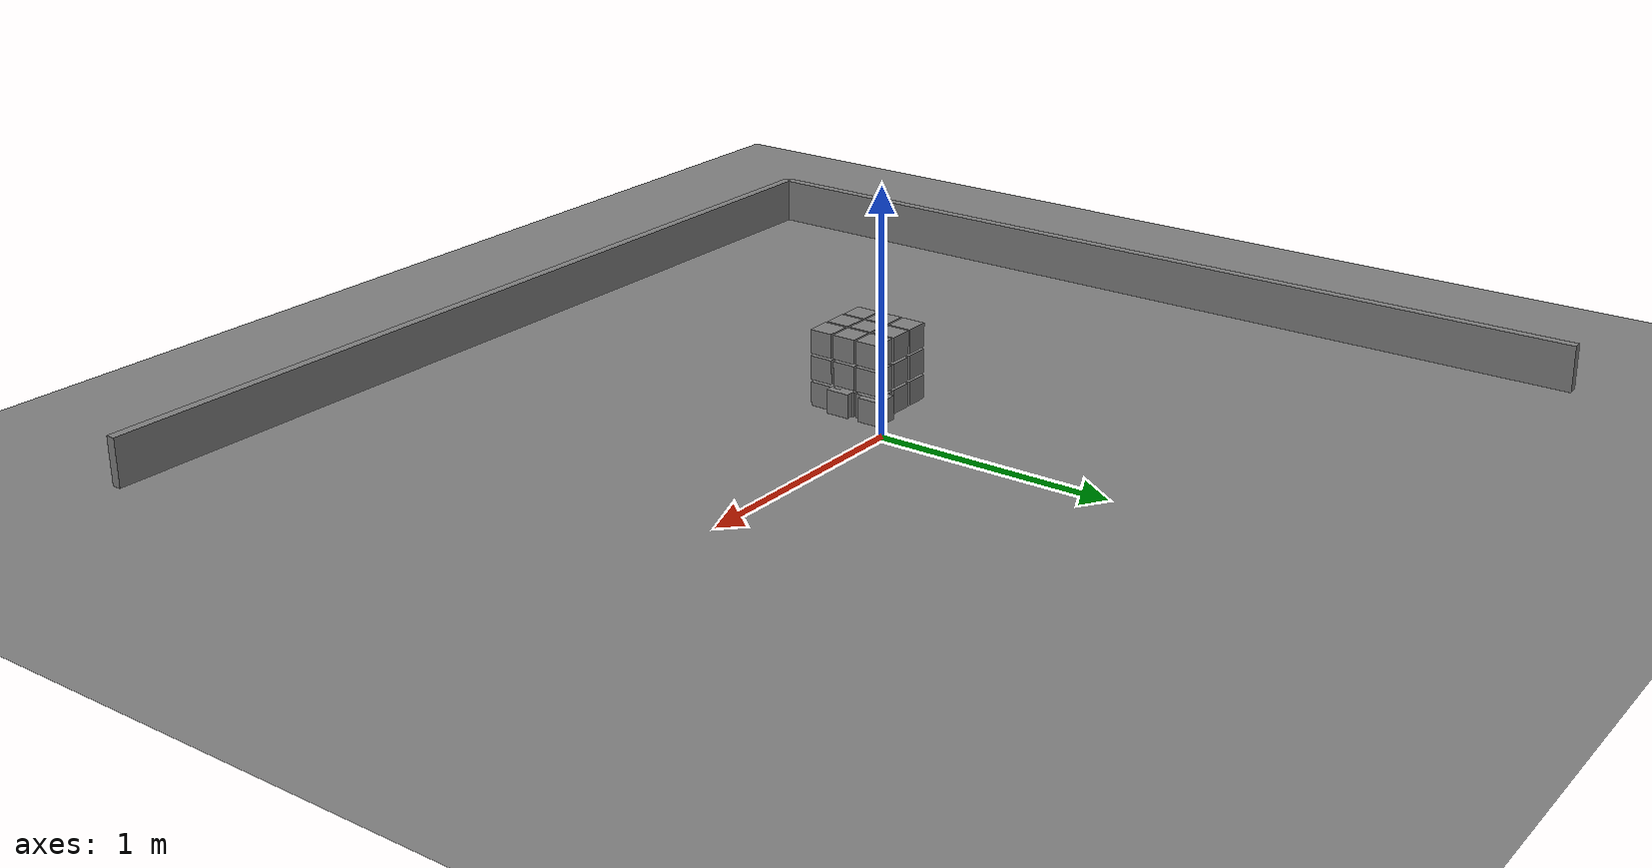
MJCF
<mujoco model="MuJoCo Model">
  <compiler angle="radian"/>
  <option gravity="-8 -8 -10" cone="elliptic" jacobian="sparse">
    <flag island="disable"/>
  </option>
  <worldbody>
    <geom name="floor" size="3 3 0.01" type="plane"/>
    <geom name="wallx" size="0.02 2 0.1" pos="-2 0 0.1" type="box"/>
    <geom name="wally" size="2 0.02 0.1" pos="0 -2 0.1" type="box"/>
    <body pos="-0.35 -0.35 0.06">
      <joint type="free"/>
      <geom size="0.05 0.05 0.05" type="box"/>
    </body>
    <body pos="-0.35 -0.35 0.17">
      <joint type="free"/>
      <geom size="0.05 0.05 0.05" type="box"/>
    </body>
    <body pos="-0.35 -0.35 0.28">
      <joint type="free"/>
      <geom size="0.05 0.05 0.05" type="box"/>
    </body>
    <body pos="-0.24 -0.35 0.06">
      <joint type="free"/>
      <geom size="0.05 0.05 0.05" type="box"/>
    </body>
    <body pos="-0.24 -0.35 0.17">
      <joint type="free"/>
      <geom size="0.05 0.05 0.05" type="box"/>
    </body>
    <body pos="-0.24 -0.35 0.28">
      <joint type="free"/>
      <geom size="0.05 0.05 0.05" type="box"/>
    </body>
    <body pos="-0.13 -0.35 0.06">
      <joint type="free"/>
      <geom size="0.05 0.05 0.05" type="box"/>
    </body>
    <body pos="-0.13 -0.35 0.17">
      <joint type="free"/>
      <geom size="0.05 0.05 0.05" type="box"/>
    </body>
    <body pos="-0.13 -0.35 0.28">
      <joint type="free"/>
      <geom size="0.05 0.05 0.05" type="box"/>
    </body>
    <body pos="-0.35 -0.24 0.06">
      <joint type="free"/>
      <geom size="0.05 0.05 0.05" type="box"/>
    </body>
    <body pos="-0.35 -0.24 0.17">
      <joint type="free"/>
      <geom size="0.05 0.05 0.05" type="box"/>
    </body>
    <body pos="-0.35 -0.24 0.28">
      <joint type="free"/>
      <geom size="0.05 0.05 0.05" type="box"/>
    </body>
    <body pos="-0.24 -0.24 0.06">
      <joint type="free"/>
      <geom size="0.05 0.05 0.05" type="box"/>
    </body>
    <body pos="-0.24 -0.24 0.17">
      <joint type="free"/>
      <geom size="0.05 0.05 0.05" type="box"/>
    </body>
    <body pos="-0.24 -0.24 0.28">
      <joint type="free"/>
      <geom size="0.05 0.05 0.05" type="box"/>
    </body>
    <body pos="-0.13 -0.24 0.06">
      <joint type="free"/>
      <geom size="0.05 0.05 0.05" type="box"/>
    </body>
    <body pos="-0.13 -0.24 0.17">
      <joint type="free"/>
      <geom size="0.05 0.05 0.05" type="box"/>
    </body>
    <body pos="-0.13 -0.24 0.28">
      <joint type="free"/>
      <geom size="0.05 0.05 0.05" type="box"/>
    </body>
    <body pos="-0.35 -0.13 0.06">
      <joint type="free"/>
      <geom size="0.05 0.05 0.05" type="box"/>
    </body>
    <body pos="-0.35 -0.13 0.17">
      <joint type="free"/>
      <geom size="0.05 0.05 0.05" type="box"/>
    </body>
    <body pos="-0.35 -0.13 0.28">
      <joint type="free"/>
      <geom size="0.05 0.05 0.05" type="box"/>
    </body>
    <body pos="-0.24 -0.13 0.06">
      <joint type="free"/>
      <geom size="0.05 0.05 0.05" type="box"/>
    </body>
    <body pos="-0.24 -0.13 0.17">
      <joint type="free"/>
      <geom size="0.05 0.05 0.05" type="box"/>
    </body>
    <body pos="-0.24 -0.13 0.28">
      <joint type="free"/>
      <geom size="0.05 0.05 0.05" type="box"/>
    </body>
    <body pos="-0.13 -0.13 0.06">
      <joint type="free"/>
      <geom size="0.05 0.05 0.05" type="box"/>
    </body>
    <body pos="-0.13 -0.13 0.17">
      <joint type="free"/>
      <geom size="0.05 0.05 0.05" type="box"/>
    </body>
    <body pos="-0.13 -0.13 0.28">
      <joint type="free"/>
      <geom size="0.05 0.05 0.05" type="box"/>
    </body>
    <body pos="-0.1 -0.1 0.06">
      <joint type="free"/>
      <geom size="0.05 0.05 0.05" type="box" condim="4" friction="1 0.01 0.01"/>
    </body>
    <body pos="-0.1 -0.25 0.06">
      <joint type="free"/>
      <geom size="0.05 0.05 0.05" type="box" condim="6" friction="1 0.01"/>
    </body>
  </worldbody>

  <keyframe>
    <key name="clump" qpos="-1.80552 -1.92899 0.165968 0.592736 -0.592938 0.392185 0.378524 -1.91689 -1.72343 0.125025 -0.756029 0.29394 0.217682 0.542802 -3.34608 -3.08037 0.0793313 0.0631402 -0.448981 0.502691 0.736024 -1.32996 -1.84813 0.153151 0.0460053 0.838601 -0.533646 -0.0992651 -1.58667 -1.90694 0.0600247 -0.103814 0.977825 0.180874 -0.0190978 -1.69405 -1.91 0.0631603 0.0550448 0.8008 -0.591397 0.0770643 -1.11534 -1.90646 0.0819339 -0.944404 -0.270052 0.187501 0.00413297 -1.37037 -1.91283 0.0497071 0.53709 0.537367 -0.460404 -0.459129 -1.45736 -1.91093 0.134893 0.762353 0.548764 0.308602 -0.149801 -1.70283 -1.8004 0.0624366 -0.657677 0.201199 -0.72166 -0.078659 -2.15684 -1.80725 0.208566 -0.797548 -0.0197236 0.547619 -0.252273 -1.92055 -1.93041 0.074474 -0.70424 -0.70167 0.0760805 -0.0769284 -1.418 -1.78879 0.0700411 0.679779 0.421502 -0.569659 -0.189012 -1.81061 -1.817 0.0704746 -0.0557282 -0.798313 0.594905 0.0753569 -1.93032 -1.81076 0.0702147 -0.262423 -0.657487 0.261998 0.655898 -1.97501 -1.91827 0.338385 0.217286 -0.0559509 0.0304223 -0.974028 -1.23449 -1.91812 0.111311 -0.671797 -0.706742 -0.2212 0.0165917 -5.8783 -5.48115 0.0724524 -0.153958 0.91941 0.296885 -0.206982 -1.84477 -1.55468 0.222738 -0.928169 0.291806 0.230792 0.00929471 -1.94089 -1.65691 0.242418 0.0653113 -0.931721 -0.0894497 0.345875 -1.91467 -1.57098 0.0792327 0.146462 0.621881 0.287342 0.713616 -1.92952 -1.34035 0.0639681 -0.578952 0.400933 -0.581946 0.4067 -1.82819 -1.68639 0.0788304 0.499555 -0.857253 -0.0383006 0.118723 -1.9249 -1.91596 0.193946 0.0337775 -0.158234 0.157887 0.974111 -1.8076 -1.54445 0.0693929 0.203363 -0.600226 -0.76113 -0.138037 -1.50655 -1.83679 0.0608567 -0.321433 0.473968 0.526256 -0.628562 -1.79592 -1.91795 0.0500959 0.424835 -0.566168 0.420047 0.567917 -1.71768 -1.69274 0.0583248 -0.379634 0.617687 -0.464897 -0.508146 -1.00384 -1.92525 0.0661914 0.00428467 -0.980606 0.0565238 -0.187613"
         qvel="-0.00494558 -0.00808939 0.000877524 -0.0350612 -0.120306 -0.0102567 -0.00179329 -0.00253295 0.00705278 -0.0403369 -0.0232614 -0.116355 -3.76442 -3.08035 -0.270143 -5.99757 3.85587 -52.3977 -0.1972 -0.0860599 0.0484248 4.11319 -0.0205565 -0.176957 -0.00976791 0.00139492 -0.00514239 -0.0349048 0.0478436 0.00402948 -0.00608278 0.000311006 -0.00583879 0.00654608 -0.0460689 -0.0399723 -0.00814054 0.00496854 -0.000421674 -0.0422736 0.00945898 0.0673762 -0.00424716 0.000319961 -0.00166294 0.000903689 0.00614393 0.0301588 -0.00798571 0.00267956 -0.00248852 -0.058754 0.00260697 -0.0122145 -0.0251608 0.00149315 -0.00282943 0.468751 0.0759554 0.184289 -1.5609 -1.1997 -0.900235 -1.39332 -9.08668 1.45195 4.96978e-05 -0.000278645 -0.0018233 0.0203923 -0.011745 -0.00465157 -0.00869249 -0.000799077 0.00280025 0.0284743 -0.035348 0.0216802 -0.00266761 -0.000236759 0.00124776 0.0809903 -0.0399589 0.00158063 0.000181942 0.0014013 0.000182431 -0.0189301 0.00866425 -0.023161 -2.22851 -1.09268 -0.0809722 -4.71503 27.2829 12.7396 -0.00803395 0.000211576 0.00617904 0.105408 0.0984387 -0.0458155 -5.65527 -4.19858 1.04317 -5.70133 60.3982 -47.1541 -0.292905 -0.545753 0.173198 -6.54682 2.67506 5.82798 -0.604323 -0.450577 0.14972 3.96949 9.95557 -2.12711 -0.361638 -0.509256 -0.21356 -8.20535 -1.03315 5.24883 -0.00310849 -0.00179056 0.00233216 -0.00836214 -0.0369884 -0.00501254 -0.0166114 0.0037789 0.00451243 0.0590519 -0.468587 0.0169815 -0.00154007 -0.00529242 0.00260869 -0.0636315 -0.031875 0.0341142 -0.393992 -0.636254 -0.0738403 -5.62658 6.51806 -4.17746 -0.00876939 0.000190178 -0.000288555 -0.0232662 0.0199585 0.000882063 -0.00673623 -0.00421145 -0.00335749 -0.0146273 0.0582595 -0.000257963 0.00110564 0.00798774 0.00569773 0.109429 0.0221659 0.0610956 -0.00826955 0.0132495 -0.00328397 -0.0587819 -0.134641 -0.18352"/>
    <key name="scatter" qpos="-1.05952 -1.05952 0.0482677 1 0.000424374 -0.000424374 3.62176e-19 -1.0604 -1.0604 0.167 1 4.21228e-19 0 0 -1.0604 -1.0604 0.287 1 4.21228e-19 0 0 -0.309524 -1.05952 0.0482677 1 0.000424374 -0.000424374 -5.00096e-19 -0.3104 -1.0604 0.167 1 4.21228e-19 0 0 -0.3104 -1.0604 0.287 1 4.21228e-19 0 0 0.440476 -1.05952 0.0482677 1 0.000424374 -0.000424374 -5.00096e-19 0.4396 -1.0604 0.167 1 4.21228e-19 0 0 0.4396 -1.0604 0.287 1 4.21228e-19 0 0 -1.05952 -0.309524 0.0482677 1 0.000424374 -0.000424374 6.37264e-19 -1.0604 -0.3104 0.167 1 4.21228e-19 0 0 -1.0604 -0.3104 0.287 1 4.21228e-19 0 0 -0.309524 -0.309524 0.0482677 1 0.000424374 -0.000424374 3.10513e-19 -0.3104 -0.3104 0.167 1 4.21228e-19 0 0 -0.3104 -0.3104 0.287 1 4.21228e-19 0 0 0.440476 -0.309524 0.0482677 1 0.000424374 -0.000424374 3.10513e-19 0.4396 -0.3104 0.167 1 4.21228e-19 0 0 0.4396 -0.3104 0.287 1 4.21228e-19 0 0 -1.05952 0.440476 0.0482677 1 0.000424374 -0.000424374 6.37264e-19 -1.0604 0.4396 0.167 1 4.21228e-19 0 0 -1.0604 0.4396 0.287 1 4.21228e-19 0 0 -0.309524 0.440476 0.0482677 1 0.000424374 -0.000424374 3.10513e-19 -0.3104 0.4396 0.167 1 4.21228e-19 0 0 -0.3104 0.4396 0.287 1 4.21228e-19 0 0 0.440476 0.440476 0.0482677 1 0.000424374 -0.000424374 3.10513e-19 0.4396 0.4396 0.167 1 4.21228e-19 0 0 0.4396 0.4396 0.287 1 4.21228e-19 0 0 -0.109524 -0.109524 0.0482677 1 0.000424374 -0.000424374 4.5737e-19 -0.109524 -0.259524 0.0482677 1 0.000424371 -0.000424371 -3.92233e-18"
         qvel="-0.190249 -0.190249 -0.198652 0.162492 -0.162492 1.12335e-16 -0.4 -0.4 -0.5 5.06884e-19 -5.06884e-19 -4.08688e-17 -0.4 -0.4 -0.5 5.06884e-19 -5.06884e-19 -4.08688e-17 -0.190249 -0.190249 -0.198652 0.162492 -0.162492 -2.21264e-16 -0.4 -0.4 -0.5 5.06884e-19 -5.06884e-19 -4.08688e-17 -0.4 -0.4 -0.5 5.06884e-19 -5.06884e-19 -4.08688e-17 -0.190249 -0.190249 -0.198652 0.162492 -0.162492 -2.21264e-16 -0.4 -0.4 -0.5 5.06884e-19 -5.06884e-19 -4.08688e-17 -0.4 -0.4 -0.5 5.06884e-19 -5.06884e-19 -4.08688e-17 -0.190249 -0.190249 -0.198652 0.162492 -0.162492 3.34386e-16 -0.4 -0.4 -0.5 5.06884e-19 -5.06884e-19 -4.08688e-17 -0.4 -0.4 -0.5 5.06884e-19 -5.06884e-19 -4.08688e-17 -0.190249 -0.190249 -0.198652 0.162492 -0.162492 4.82211e-17 -0.4 -0.4 -0.5 5.06884e-19 -5.06884e-19 -4.08688e-17 -0.4 -0.4 -0.5 5.06884e-19 -5.06884e-19 -4.08688e-17 -0.190249 -0.190249 -0.198652 0.162492 -0.162492 4.82211e-17 -0.4 -0.4 -0.5 5.06884e-19 -5.06884e-19 -4.08688e-17 -0.4 -0.4 -0.5 5.06884e-19 -5.06884e-19 -4.08688e-17 -0.190249 -0.190249 -0.198652 0.162492 -0.162492 3.34386e-16 -0.4 -0.4 -0.5 5.06884e-19 -5.06884e-19 -4.08688e-17 -0.4 -0.4 -0.5 5.06884e-19 -5.06884e-19 -4.08688e-17 -0.190249 -0.190249 -0.198652 0.162492 -0.162492 4.82211e-17 -0.4 -0.4 -0.5 5.06884e-19 -5.06884e-19 -4.08688e-17 -0.4 -0.4 -0.5 5.06884e-19 -5.06884e-19 -4.08688e-17 -0.190249 -0.190249 -0.198652 0.162492 -0.162492 4.82211e-17 -0.4 -0.4 -0.5 5.06884e-19 -5.06884e-19 -4.08688e-17 -0.4 -0.4 -0.5 5.06884e-19 -5.06884e-19 -4.08688e-17 -0.190249 -0.190249 -0.198652 0.162492 -0.162492 1.95832e-16 -0.190249 -0.190249 -0.198652 0.162491 -0.162491 -9.31588e-16"/>
  </keyframe>
</mujoco>
